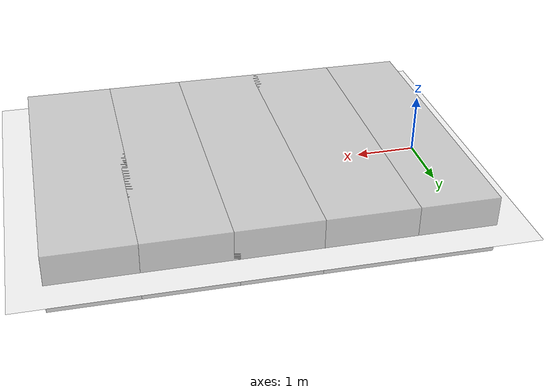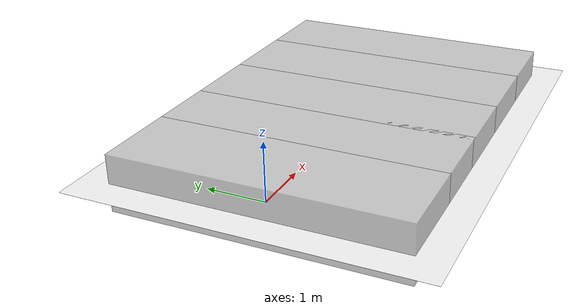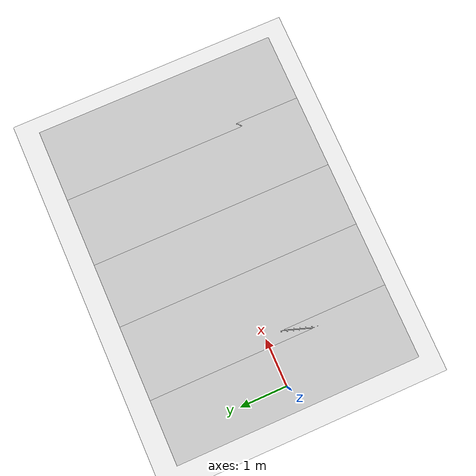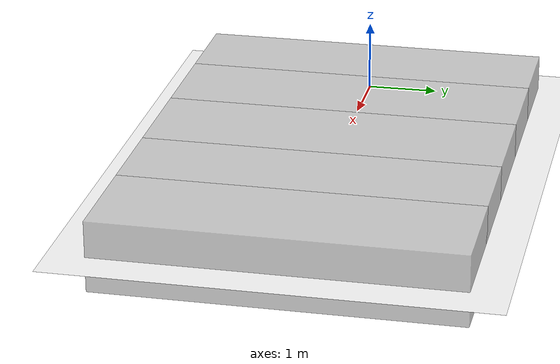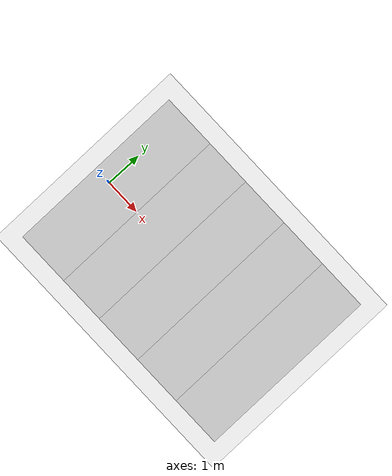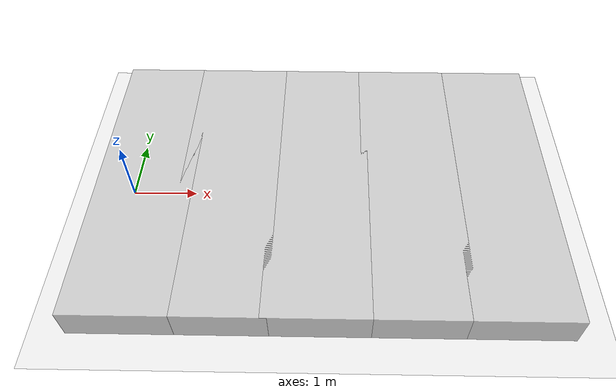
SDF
<?xml version="1.0" ?>
<sdf version="1.2">
  <world name="default">

    <physics type='ode'>
      <gravity>0 0 -9.81</gravity>
      <!-- max step size has to be a multiple of the desired task rate-->
      <max_step_size>0.001</max_step_size>
      <real_time_factor>1</real_time_factor>
    </physics>

    <!-- A global light source -->
    <include>
      <uri>model://sun</uri>
    </include>

    <!-- A ground plane -->
    <include>
      <uri>model://ground_plane</uri>
    </include>

    <include>
      <name>soft ground Rigid</name>
      <uri>model://soft_ground_Rigid</uri>
      <pose>0.3 0 0 0 0 0</pose>
    </include>

    <include>
      <name>soft ground R</name>
      <uri>model://soft_ground_R</uri>
      <pose>1.6 0 0 0 0 0</pose>
    </include>
    <include>
      <name>soft ground G</name>
      <uri>model://soft_ground_G</uri>
      <pose>3.0 0 0 0 0 0</pose>
    </include>

    <include>
      <name>soft ground B</name>
      <uri>model://soft_ground_B</uri>
      <pose>4.4 0 0 0 0 0</pose>
    </include>

    <include>
      <name>soft ground Rigid</name>
      <uri>model://soft_ground_Rigid</uri>
      <pose>5.8 0 0 0 0 0</pose>
    </include>

  </world>
</sdf>

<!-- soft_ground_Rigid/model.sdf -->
<sdf version="1.2">
  <model name="soft_ground_Rigid">
    <static>true</static>
    <link name="link">
      <collision name="collision">
        <pose>0 0 0 0 0 0</pose>
        <geometry>
          <box>
            <size>1.5 5 1</size>
          </box>
        </geometry>

        <surface>
          <bounce>
            <restitution_coefficient>0.01</restitution_coefficient>
            <threshold>5.0</threshold>
          </bounce>
          <friction>
            <ode>
              <mu>1</mu>
              <mu2>1</mu2>
            </ode>
          </friction>
        </surface>

      </collision>
      <visual name="visual_1">
	<transparency>0.3</transparency>
        <pose>0 0 0 0 0 0</pose>
        <cast_shadows>false</cast_shadows>
        <geometry>
          <box>
            <size>1.5 5 1</size>
          </box>
        </geometry>
        <material>
	  <lighting>false</lighting>
          <script>
            <uri>model://soft_ground_Rigid/materials/scripts</uri>
            <uri>model://soft_ground_Rigid/materials/textures</uri>
            <name>vrc/soft_ground_Rigid</name>
          </script>
        </material>
      </visual>
    </link>
  </model>cc
</sdf>

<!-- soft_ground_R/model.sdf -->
<sdf version="1.2">
  <model name="soft_ground_R">
    <static>true</static>
    <link name="link">
      <collision name="collision">
        <pose>0 0 0 0 0 0</pose>
        <geometry>
          <box>
            <size>1.5 5 1</size>
          </box>
        </geometry>

        <surface>
          <friction>
            <ode>
              <mu>1</mu>
              <mu2>1</mu2>
            </ode>
          </friction>
          <contact>
            <ode>
        <kp>3500.0</kp>  <kd>400.0</kd>  <!-- gain set 1 -->
        <!-- gain set 2 -->
          <!-- kd = 0.3 kp --> <!-- gain set 3 -->
            </ode>
          </contact>
        </surface>

      </collision>
      <visual name="visual_1">
	<transparency>0.3</transparency>
        <pose>0 0 0 0 0 0</pose>
        <cast_shadows>false</cast_shadows>
        <geometry>
          <box>
            <size>1.5 5 1</size>
          </box>
        </geometry>
        <material>
	  <lighting>true</lighting>
          <script>
            <uri>model://soft_ground_R/materials/scripts</uri>
            <uri>model://soft_ground_R/materials/textures</uri>
            <name>vrc/mudR</name>
          </script>
        </material>
      </visual>
    </link>
  </model>cc
</sdf>

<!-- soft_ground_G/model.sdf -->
<sdf version="1.2">
  <model name="soft_ground_G">
    <static>true</static>
    <link name="link">
      <collision name="collision">
        <pose>0 0 0 0 0 0</pose>
        <geometry>
          <box>
            <size>1.5 5 1</size>
          </box>
        </geometry>

        <surface>
          <friction>
            <ode>
              <mu>1</mu>
              <mu2>1</mu2>
            </ode>
          </friction>
          <contact>
            <ode>
        <kp>8000.0</kp>  <kd>400.0</kd>  <!-- gain set 1 -->
        <!-- gain set 2 -->
          <!-- kd = 0.3 kp --> <!-- gain set 3 -->
            </ode>
          </contact>
        </surface>

      </collision>
      <visual name="visual_1">
	<transparency>0.3</transparency>
        <pose>0 0 0 0 0 0</pose>
        <cast_shadows>false</cast_shadows>
        <geometry>
          <box>
            <size>1.5 5 1</size>
          </box>
        </geometry>
        <material>
	  <lighting>true</lighting>
          <script>
            <uri>model://soft_ground_G/materials/scripts</uri>
            <uri>model://soft_ground_G/materials/textures</uri>
            <name>vrc/mudG</name>
          </script>
        </material>
      </visual>
    </link>
  </model>cc
</sdf>

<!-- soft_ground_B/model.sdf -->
<sdf version="1.2">
  <model name="soft_ground_B">
    <static>true</static>
    <link name="link">
      <collision name="collision">
        <pose>0 0 0 0 0 0</pose>
        <geometry>
          <box>
            <size>1.5 5 1</size>
          </box>
        </geometry>

        <surface>
          <friction>
            <ode>
              <mu>1</mu>
              <mu2>1</mu2>
            </ode>
          </friction>
          <contact>
            <ode>
        <kp>10000.0</kp>  <kd>600.0</kd>  <!-- gain set 1 -->
        <!-- gain set 2 -->
          <!-- kd = 0.3 kp --> <!-- gain set 3 -->
            </ode>
          </contact>
        </surface>

      </collision>
      <visual name="visual_1">
	<transparency>0.3</transparency>
        <pose>0 0 0 0 0 0</pose>
        <cast_shadows>false</cast_shadows>
        <geometry>
          <box>
            <size>1.5 5 1</size>
          </box>
        </geometry>
        <material>
	  <lighting>true</lighting>
          <script>
            <uri>model://soft_ground_B/materials/scripts</uri>
            <uri>model://soft_ground_B/materials/textures</uri>
            <name>vrc/mudB</name>
          </script>
        </material>
      </visual>
    </link>
  </model>cc
</sdf>
